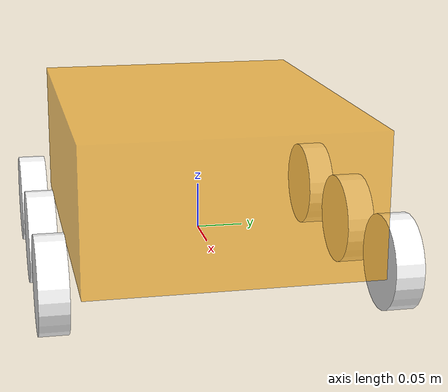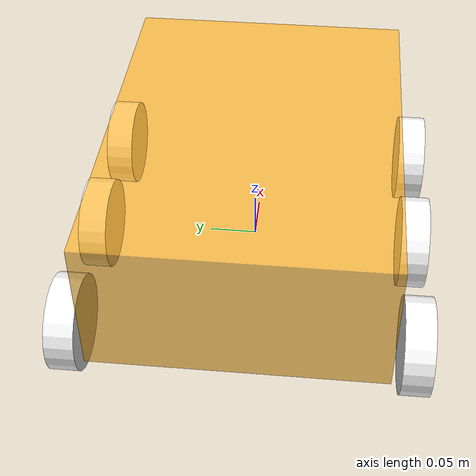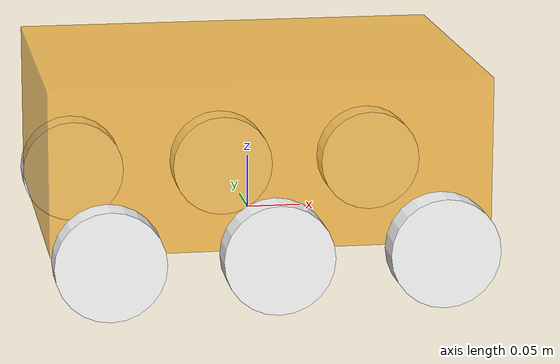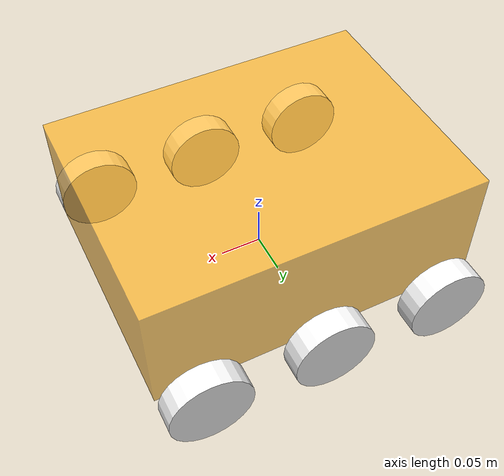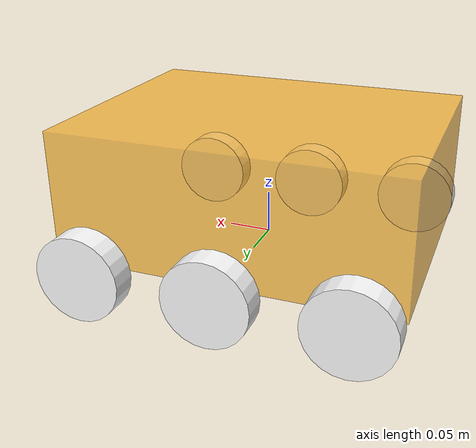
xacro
<?xml version="1.0"?>
<robot name="hermes" xmlns:xacro="http://www.ros.org/wiki/xacro">

<xacro:include filename="materials.xacro" />
<xacro:include filename="inertial_macros.xacro" />
<xacro:include filename="hermes_parameters.xacro" />

<!-- BASE LINK -->
<link name="base_link">

</link>

<!-- CHASSIS LINK -->

<joint name="chassis_joint" type="fixed">
    <parent link="base_link" />
    <child link="chassis" />
    <!-- Move origin to back of robot -->
    <origin xyz="-${chassis_length/2} 0 0" />
</joint>

<link name="chassis">
    <visual>
        <origin xyz="${chassis_length/2} 0 ${chassis_height/2}" />
        <geometry>
            <box size="${chassis_length} ${chassis_width} ${chassis_height}" />
        </geometry>
        <material name="orange" />
    </visual>
    <collision>
        <origin xyz="${chassis_length/2} 0 ${chassis_height/2}" />
        <geometry>
            <box size="${chassis_length} ${chassis_width} ${chassis_height}" />
        </geometry>
    </collision>
    <xacro:inertial_box mass="${chassis_mass}" x="${chassis_length}" y="${chassis_width}" z="${chassis_height}">
        <origin xyz="${chassis_length/2} 0 ${chassis_height/2}" rpy="0 0 0"/>
    </xacro:inertial_box>
</link>

<gazebo reference="chassis">
    <material>Gazebo/Orange</material>
    <mu1 value="0.001" />
    <mu2 value="0.001" />
</gazebo>

<!-- WHEEL LINK -->

<xacro:macro name="wheel" params="prefix_side prefix_position position_offset reflect">
    <joint name="${prefix_side}_${prefix_position}_wheel_joint" type="continuous">
        <parent link="base_link" />
        <child link="${prefix_side}_${prefix_position}_wheel" />
        <!-- rpy is so that we can rotate the wheel along the X axis, because cylinders by default are oriented z-up -->
        <origin xyz="${position_offset} ${reflect * (chassis_width/2 + wheel_length / 2 +  wheel_offset) } 0" rpy="${-reflect*pi/2} 0 0" />
        <axis xyz="0 0 ${reflect}" />
    </joint>

    <link name="${prefix_side}_${prefix_position}_wheel">
        <visual>
            <geometry>
                <cylinder radius="${wheel_radius}" length="${wheel_length}" />
            </geometry>
            <material name="black" />
        </visual>
        <collision>
            <geometry>
                <cylinder radius="${wheel_radius}" length="${wheel_length}" />
            </geometry>
        </collision>
        <xacro:inertial_cylinder mass="${wheel_mass}" length="${wheel_length}" radius="${wheel_radius}">
            <origin xyz="0 0 0" rpy="0 0 0" />
        </xacro:inertial_cylinder>

    </link>
    <gazebo reference="${prefix_side}_${prefix_position}_wheel">
        <material>Gazebo/Black</material>
        <mu1 value="0.2" />
        <mu2 value="0.2" />
    </gazebo>
</xacro:macro>

<!-- LEFT WHEEL -->
<xacro:wheel prefix_side="left" prefix_position="rear" position_offset="-0.15" reflect="1" />
<xacro:wheel prefix_side="left" prefix_position="middle" position_offset="0" reflect="1" />
<xacro:wheel prefix_side="left" prefix_position="front" position_offset="0.15" reflect="1" />

<!-- RIGHT WHEEL -->
<xacro:wheel prefix_side="right" prefix_position="rear" position_offset="-0.15" reflect="-1" />
<xacro:wheel prefix_side="right" prefix_position="middle" position_offset="0" reflect="-1" />
<xacro:wheel prefix_side="right" prefix_position="front" position_offset="0.15" reflect="-1" />

</robot>

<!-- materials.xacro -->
<robot name="hermes" xmlns:xacro="http://www.ros.org/wiki/xacro" >

<material name="silver">
  <color rgba="0.700 0.700 0.700 1.000"/>
</material>

<material name="orange">
    <color rgba="1.000 0.650 0 0.600" />
</material>

<material name="black">
    <color rgba="1.000 1.000 1.000 1.000" />
</material>

<material name="red">
    <color rgba="1 0 0 1" />
</material>

</robot>

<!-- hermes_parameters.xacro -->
<robot name="hermes" xmlns:xacro="http://www.ros.org/wiki/xacro">

    <!-- CHASSIS PARAMETERS -->
    <xacro:property name="chassis_width" value="0.3" />
    <xacro:property name="chassis_length" value="0.4" />
    <xacro:property name="chassis_height" value="0.15" />

    <!-- WHEEL PARAMETERS -->
    <xacro:property name="wheel_radius" value="0.05" />
    <xacro:property name="wheel_length" value="0.03" />

    <!--MASSES IN KG-->
    <xacro:property name="wheel_mass" value="0.08" />
    <xacro:property name="chassis_mass" value="4" />

    <!-- LIDAR PARAMETERS -->

    <!-- CAMERA PARAMETERS -->

    <!-- The height of the camera above the chassis top-->
    <xacro:property name="camera_height" value="0.03" />
    <!-- How far the wheel is from the body of the robot -->
    <xacro:property name="wheel_offset" value="0.01" />

</robot>
